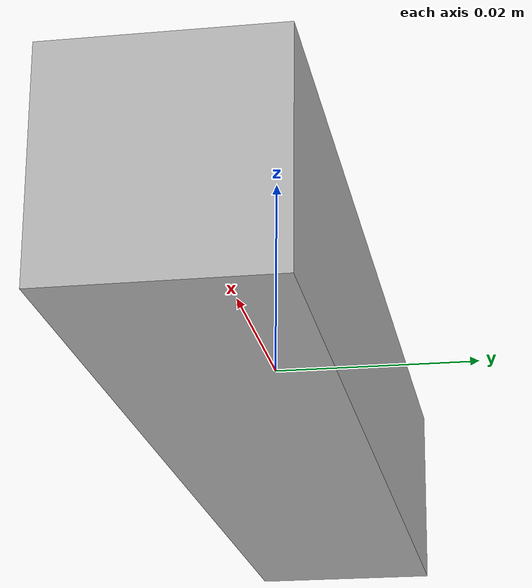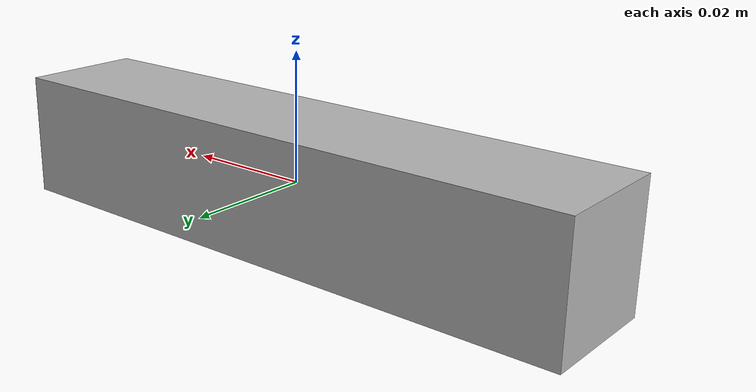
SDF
<?xml version="1.0"?>
<sdf version="1.6">
  <model name="realsense_d435">
    <pose>0 0 0 0 0 0</pose>
    <self_collide>false</self_collide>
    <static>false</static>
    <link name="realsense_d435/base_link">
      <inertial>
        <pose>0 0 0 0 0 0</pose>
        <mass>0.0615752</mass>
        <inertia>
          <ixx>9.108e-05</ixx>
          <ixy>0</ixy>
          <ixz>0</ixz>
          <iyy>2.51e-06</iyy>
          <iyz>0</iyz>
          <izz>8.931e-05</izz>
        </inertia>
      </inertial>
      <visual name= "realsense_d435/visual">
          <!-- fallback to script if no PBR support-->
        <geometry>
          <box>
            <size>0.1 0.02 0.02</size>
          </box>
        </geometry>
      </visual>

      <sensor name="realsense_d435" type="rgbd_camera">
        <pose>0 0 0 0 0 -1.57</pose>
        <update_rate>30</update_rate>
        <topic>/rgbd_camera</topic>
        <camera name="camera">
          <horizontal_fov>1.0472</horizontal_fov>
          <lens>
            <intrinsics>
              <!-- fx = fy = width / ( 2 * tan (hfov / 2 ) ) -->
              <fx>554.25469</fx>
              <fy>554.25469</fy>
              <!-- cx = ( width + 1 ) / 2 -->
              <cx>320.5</cx>
              <!-- cy = ( height + 1 ) / 2 -->
              <cy>240.5</cy>
              <s>0</s>
            </intrinsics>
          </lens>
          <distortion>
            <k1>0.0</k1>
            <k2>0.0</k2>
            <k3>0.0</k3>
            <p1>0.0</p1>
            <p2>0.0</p2>
            <center>0.5 0.5</center>
          </distortion>
          <image>
            <width>640</width>
            <height>480</height>
            <format>R8G8B8</format>
          </image>
          <clip>
            <near>0.01</near>
            <far>40</far>
          </clip>
          <depth_camera>
            <clip>
              <near>0.1</near>
              <far>40</far>
            </clip>
          </depth_camera>
          <noise>
            <type>gaussian</type>
            <mean>0</mean>
            <stddev>0.007</stddev>
          </noise>
        </camera>
      </sensor>

    </link>
  </model>
</sdf>
